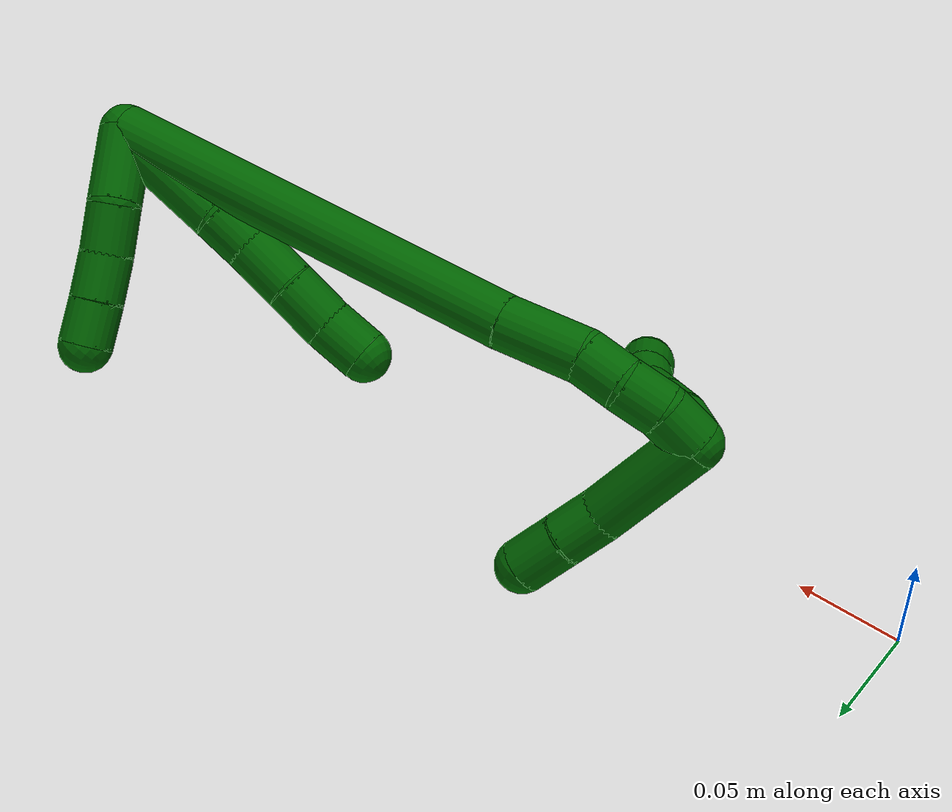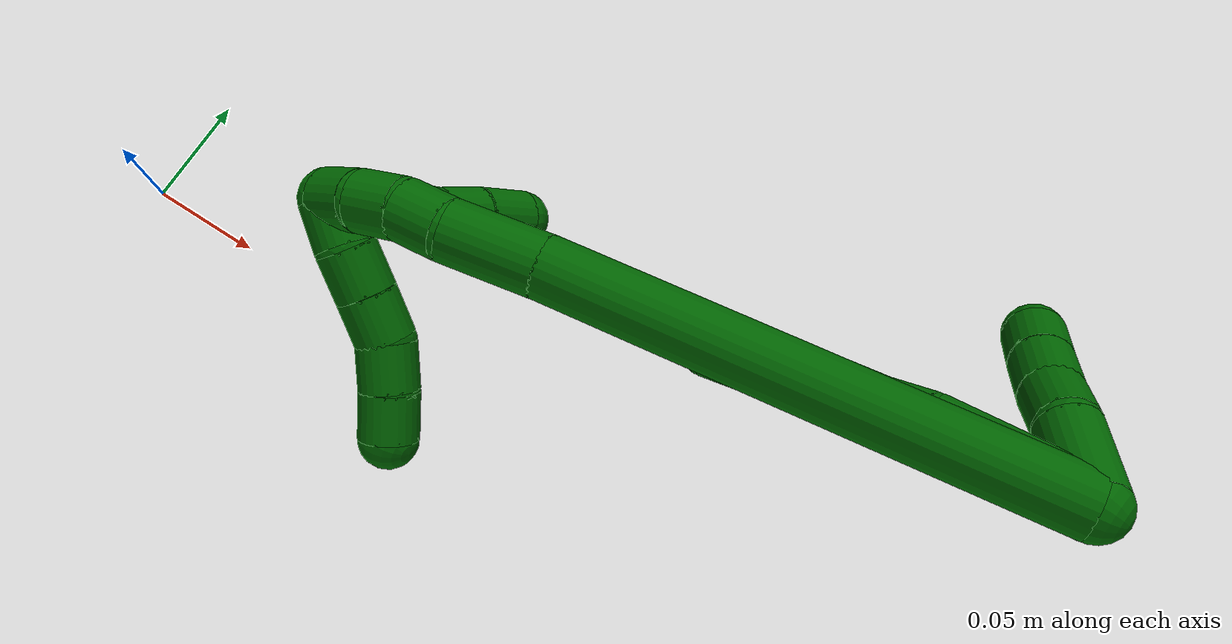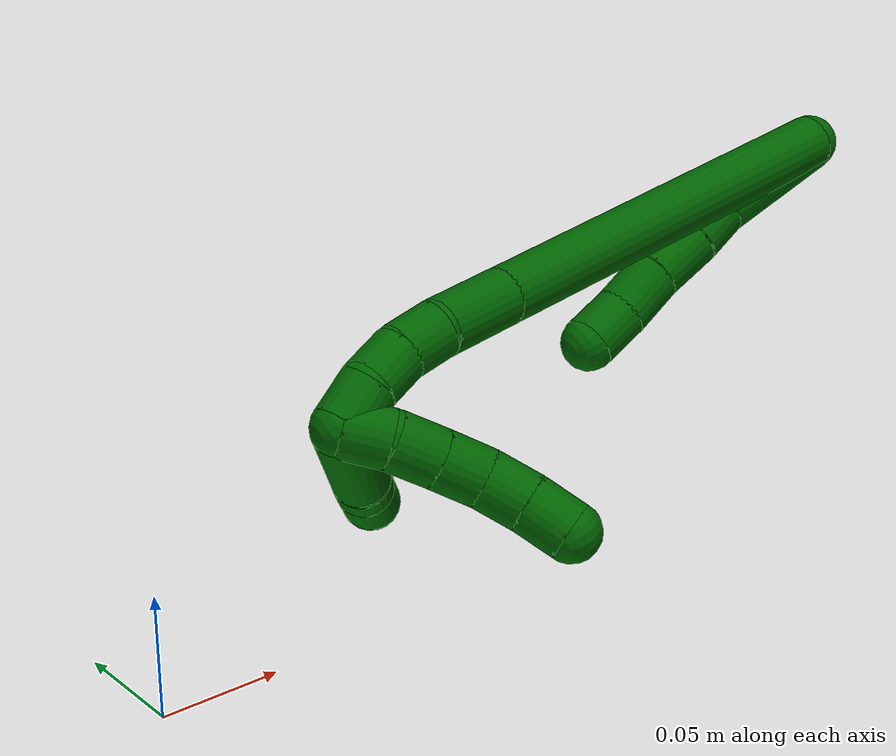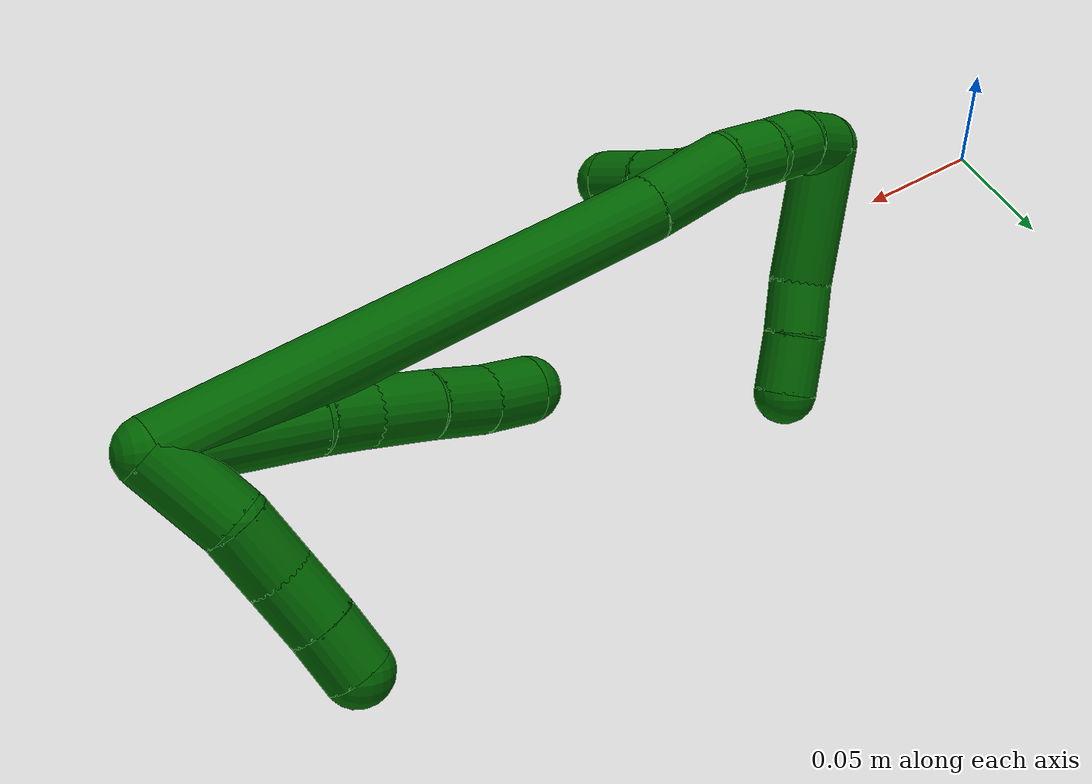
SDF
<sdf version="1.7">
 <world name="default">
  <model name="6">
   <static>0</static>
   <link name="6">
    <collision name="collision-cylinder-e_1_2_8">
     <pose>0.0019 -0.002079 -0.029008 3.07004 0.065245 1.47856</pose>
     <geometry><cylinder><radius>0.0125</radius><length>0.05829</length></cylinder></geometry>
     <surface>
      <friction><ode><mu>1.16</mu><mu2>1.16</mu2><slip1>0</slip1><slip2>0</slip2></ode></friction>
      <contact><ode><kp>1e+06</kp><kd>1</kd><max_vel>0</max_vel><min_depth>0.001</min_depth></ode></contact>
     </surface>
    </collision>
    <visual name="visual-cylinder-e_1_2_8">
     <pose>0.0019 -0.002079 -0.029008 3.07004 0.065245 1.47856</pose>
     <geometry><cylinder><radius>0.0125</radius><length>0.05829</length></cylinder></geometry>
     <material><ambient>0 0.392157 0.003922 1</ambient></material>
    </visual>
    <collision name="collision-cylinder-e_2_8_9">
     <pose>0.006336 -0.005017 -0.06776 3.05368 0.253686 2.47735</pose>
     <geometry><cylinder><radius>0.0125</radius><length>0.020208</length></cylinder></geometry>
     <surface>
      <friction><ode><mu>1.16</mu><mu2>1.16</mu2><slip1>0</slip1><slip2>0</slip2></ode></friction>
      <contact><ode><kp>1e+06</kp><kd>1</kd><max_vel>0</max_vel><min_depth>0.001</min_depth></ode></contact>
     </surface>
    </collision>
    <visual name="visual-cylinder-e_2_8_9">
     <pose>0.006336 -0.005017 -0.06776 3.05368 0.253686 2.47735</pose>
     <geometry><cylinder><radius>0.0125</radius><length>0.020208</length></cylinder></geometry>
     <material><ambient>0 0.392157 0.003922 1</ambient></material>
    </visual>
    <collision name="collision-cylinder-e_3_9_10">
     <pose>0.011035 -0.006425 -0.090249 3.09851 0.16791 2.64038</pose>
     <geometry><cylinder><radius>0.0125</radius><length>0.02588</length></cylinder></geometry>
     <surface>
      <friction><ode><mu>1.16</mu><mu2>1.16</mu2><slip1>0</slip1><slip2>0</slip2></ode></friction>
      <contact><ode><kp>1e+06</kp><kd>1</kd><max_vel>0</max_vel><min_depth>0.001</min_depth></ode></contact>
     </surface>
    </collision>
    <visual name="visual-cylinder-e_3_9_10">
     <pose>0.011035 -0.006425 -0.090249 3.09851 0.16791 2.64038</pose>
     <geometry><cylinder><radius>0.0125</radius><length>0.02588</length></cylinder></geometry>
     <material><ambient>0 0.392157 0.003922 1</ambient></material>
    </visual>
    <collision name="collision-cylinder-e_4_10_11">
     <pose>0.016459 -0.007601 -0.114633 3.08782 0.272878 2.7547</pose>
     <geometry><cylinder><radius>0.0125</radius><length>0.024204</length></cylinder></geometry>
     <surface>
      <friction><ode><mu>1.16</mu><mu2>1.16</mu2><slip1>0</slip1><slip2>0</slip2></ode></friction>
      <contact><ode><kp>1e+06</kp><kd>1</kd><max_vel>0</max_vel><min_depth>0.001</min_depth></ode></contact>
     </surface>
    </collision>
    <visual name="visual-cylinder-e_4_10_11">
     <pose>0.016459 -0.007601 -0.114633 3.08782 0.272878 2.7547</pose>
     <geometry><cylinder><radius>0.0125</radius><length>0.024204</length></cylinder></geometry>
     <material><ambient>0 0.392157 0.003922 1</ambient></material>
    </visual>
    <collision name="collision-cylinder-e_5_11_6">
     <pose>0.021531 -0.009512 -0.136746 3.01959 0.169925 1.89729</pose>
     <geometry><cylinder><radius>0.0125</radius><length>0.021418</length></cylinder></geometry>
     <surface>
      <friction><ode><mu>1.16</mu><mu2>1.16</mu2><slip1>0</slip1><slip2>0</slip2></ode></friction>
      <contact><ode><kp>1e+06</kp><kd>1</kd><max_vel>0</max_vel><min_depth>0.001</min_depth></ode></contact>
     </surface>
    </collision>
    <visual name="visual-cylinder-e_5_11_6">
     <pose>0.021531 -0.009512 -0.136746 3.01959 0.169925 1.89729</pose>
     <geometry><cylinder><radius>0.0125</radius><length>0.021418</length></cylinder></geometry>
     <material><ambient>0 0.392157 0.003922 1</ambient></material>
    </visual>
    <collision name="collision-cylinder-e_1_2_12">
     <pose>0.001255 0.013287 -0.011096 -2.26658 0.072366 -0.154475</pose>
     <geometry><cylinder><radius>0.0125</radius><length>0.034711</length></cylinder></geometry>
     <surface>
      <friction><ode><mu>1.16</mu><mu2>1.16</mu2><slip1>0</slip1><slip2>0</slip2></ode></friction>
      <contact><ode><kp>1e+06</kp><kd>1</kd><max_vel>0</max_vel><min_depth>0.001</min_depth></ode></contact>
     </surface>
    </collision>
    <visual name="visual-cylinder-e_1_2_12">
     <pose>0.001255 0.013287 -0.011096 -2.26658 0.072366 -0.154475</pose>
     <geometry><cylinder><radius>0.0125</radius><length>0.034711</length></cylinder></geometry>
     <material><ambient>0 0.392157 0.003922 1</ambient></material>
    </visual>
    <collision name="collision-cylinder-e_2_12_13">
     <pose>0.006281 0.035321 -0.028594 -2.2026 0.334824 -0.643083</pose>
     <geometry><cylinder><radius>0.0125</radius><length>0.022955</length></cylinder></geometry>
     <surface>
      <friction><ode><mu>1.16</mu><mu2>1.16</mu2><slip1>0</slip1><slip2>0</slip2></ode></friction>
      <contact><ode><kp>1e+06</kp><kd>1</kd><max_vel>0</max_vel><min_depth>0.001</min_depth></ode></contact>
     </surface>
    </collision>
    <visual name="visual-cylinder-e_2_12_13">
     <pose>0.006281 0.035321 -0.028594 -2.2026 0.334824 -0.643083</pose>
     <geometry><cylinder><radius>0.0125</radius><length>0.022955</length></cylinder></geometry>
     <material><ambient>0 0.392157 0.003922 1</ambient></material>
    </visual>
    <collision name="collision-cylinder-e_3_13_14">
     <pose>0.01279 0.052783 -0.040887 -2.16521 0.254568 -0.47294</pose>
     <geometry><cylinder><radius>0.0125</radius><length>0.021738</length></cylinder></geometry>
     <surface>
      <friction><ode><mu>1.16</mu><mu2>1.16</mu2><slip1>0</slip1><slip2>0</slip2></ode></friction>
      <contact><ode><kp>1e+06</kp><kd>1</kd><max_vel>0</max_vel><min_depth>0.001</min_depth></ode></contact>
     </surface>
    </collision>
    <visual name="visual-cylinder-e_3_13_14">
     <pose>0.01279 0.052783 -0.040887 -2.16521 0.254568 -0.47294</pose>
     <geometry><cylinder><radius>0.0125</radius><length>0.021738</length></cylinder></geometry>
     <material><ambient>0 0.392157 0.003922 1</ambient></material>
    </visual>
    <collision name="collision-cylinder-e_4_14_5">
     <pose>0.018336 0.069927 -0.051983 -2.12407 0.276296 -0.488608</pose>
     <geometry><cylinder><radius>0.0125</radius><length>0.020595</length></cylinder></geometry>
     <surface>
      <friction><ode><mu>1.16</mu><mu2>1.16</mu2><slip1>0</slip1><slip2>0</slip2></ode></friction>
      <contact><ode><kp>1e+06</kp><kd>1</kd><max_vel>0</max_vel><min_depth>0.001</min_depth></ode></contact>
     </surface>
    </collision>
    <visual name="visual-cylinder-e_4_14_5">
     <pose>0.018336 0.069927 -0.051983 -2.12407 0.276296 -0.488608</pose>
     <geometry><cylinder><radius>0.0125</radius><length>0.020595</length></cylinder></geometry>
     <material><ambient>0 0.392157 0.003922 1</ambient></material>
    </visual>
    <collision name="collision-cylinder-e_1_2_15">
     <pose>-0.011576 -0.02901 -0.095833 2.84765 -0.1151 -0.74229</pose>
     <geometry><cylinder><radius>0.0125</radius><length>0.201588</length></cylinder></geometry>
     <surface>
      <friction><ode><mu>1.16</mu><mu2>1.16</mu2><slip1>0</slip1><slip2>0</slip2></ode></friction>
      <contact><ode><kp>1e+06</kp><kd>1</kd><max_vel>0</max_vel><min_depth>0.001</min_depth></ode></contact>
     </surface>
    </collision>
    <visual name="visual-cylinder-e_1_2_15">
     <pose>-0.011576 -0.02901 -0.095833 2.84765 -0.1151 -0.74229</pose>
     <geometry><cylinder><radius>0.0125</radius><length>0.201588</length></cylinder></geometry>
     <material><ambient>0 0.392157 0.003922 1</ambient></material>
    </visual>
    <collision name="collision-cylinder-e_2_15_16">
     <pose>-0.025516 -0.064629 -0.209408 2.78498 -0.124219 -0.664558</pose>
     <geometry><cylinder><radius>0.0125</radius><length>0.038162</length></cylinder></geometry>
     <surface>
      <friction><ode><mu>1.16</mu><mu2>1.16</mu2><slip1>0</slip1><slip2>0</slip2></ode></friction>
      <contact><ode><kp>1e+06</kp><kd>1</kd><max_vel>0</max_vel><min_depth>0.001</min_depth></ode></contact>
     </surface>
    </collision>
    <visual name="visual-cylinder-e_2_15_16">
     <pose>-0.025516 -0.064629 -0.209408 2.78498 -0.124219 -0.664558</pose>
     <geometry><cylinder><radius>0.0125</radius><length>0.038162</length></cylinder></geometry>
     <material><ambient>0 0.392157 0.003922 1</ambient></material>
    </visual>
    <collision name="collision-cylinder-e_3_16_17">
     <pose>-0.027972 -0.072889 -0.237076 2.9768 -0.009166 -0.110879</pose>
     <geometry><cylinder><radius>0.0125</radius><length>0.020124</length></cylinder></geometry>
     <surface>
      <friction><ode><mu>1.16</mu><mu2>1.16</mu2><slip1>0</slip1><slip2>0</slip2></ode></friction>
      <contact><ode><kp>1e+06</kp><kd>1</kd><max_vel>0</max_vel><min_depth>0.001</min_depth></ode></contact>
     </surface>
    </collision>
    <visual name="visual-cylinder-e_3_16_17">
     <pose>-0.027972 -0.072889 -0.237076 2.9768 -0.009166 -0.110879</pose>
     <geometry><cylinder><radius>0.0125</radius><length>0.020124</length></cylinder></geometry>
     <material><ambient>0 0.392157 0.003922 1</ambient></material>
    </visual>
    <collision name="collision-cylinder-e_4_17_18">
     <pose>-0.026114 -0.077005 -0.256524 2.88831 0.195748 1.31383</pose>
     <geometry><cylinder><radius>0.0125</radius><length>0.020057</length></cylinder></geometry>
     <surface>
      <friction><ode><mu>1.16</mu><mu2>1.16</mu2><slip1>0</slip1><slip2>0</slip2></ode></friction>
      <contact><ode><kp>1e+06</kp><kd>1</kd><max_vel>0</max_vel><min_depth>0.001</min_depth></ode></contact>
     </surface>
    </collision>
    <visual name="visual-cylinder-e_4_17_18">
     <pose>-0.026114 -0.077005 -0.256524 2.88831 0.195748 1.31383</pose>
     <geometry><cylinder><radius>0.0125</radius><length>0.020057</length></cylinder></geometry>
     <material><ambient>0 0.392157 0.003922 1</ambient></material>
    </visual>
    <collision name="collision-cylinder-e_5_18_1">
     <pose>-0.020096 -0.080418 -0.275171 3.03809 0.417358 2.66182</pose>
     <geometry><cylinder><radius>0.0125</radius><length>0.02007</length></cylinder></geometry>
     <surface>
      <friction><ode><mu>1.16</mu><mu2>1.16</mu2><slip1>0</slip1><slip2>0</slip2></ode></friction>
      <contact><ode><kp>1e+06</kp><kd>1</kd><max_vel>0</max_vel><min_depth>0.001</min_depth></ode></contact>
     </surface>
    </collision>
    <visual name="visual-cylinder-e_5_18_1">
     <pose>-0.020096 -0.080418 -0.275171 3.03809 0.417358 2.66182</pose>
     <geometry><cylinder><radius>0.0125</radius><length>0.02007</length></cylinder></geometry>
     <material><ambient>0 0.392157 0.003922 1</ambient></material>
    </visual>
    <collision name="collision-cylinder-e_1_1_19">
     <pose>-0.00023 -0.059169 -0.27936 -1.35202 0.6072 -0.492368</pose>
     <geometry><cylinder><radius>0.0125</radius><length>0.055375</length></cylinder></geometry>
     <surface>
      <friction><ode><mu>1.16</mu><mu2>1.16</mu2><slip1>0</slip1><slip2>0</slip2></ode></friction>
      <contact><ode><kp>1e+06</kp><kd>1</kd><max_vel>0</max_vel><min_depth>0.001</min_depth></ode></contact>
     </surface>
    </collision>
    <visual name="visual-cylinder-e_1_1_19">
     <pose>-0.00023 -0.059169 -0.27936 -1.35202 0.6072 -0.492368</pose>
     <geometry><cylinder><radius>0.0125</radius><length>0.055375</length></cylinder></geometry>
     <material><ambient>0 0.392157 0.003922 1</ambient></material>
    </visual>
    <collision name="collision-cylinder-e_2_19_20">
     <pose>0.019795 -0.027543 -0.272044 -1.32337 0.41008 -0.321139</pose>
     <geometry><cylinder><radius>0.0125</radius><length>0.021211</length></cylinder></geometry>
     <surface>
      <friction><ode><mu>1.16</mu><mu2>1.16</mu2><slip1>0</slip1><slip2>0</slip2></ode></friction>
      <contact><ode><kp>1e+06</kp><kd>1</kd><max_vel>0</max_vel><min_depth>0.001</min_depth></ode></contact>
     </surface>
    </collision>
    <visual name="visual-cylinder-e_2_19_20">
     <pose>0.019795 -0.027543 -0.272044 -1.32337 0.41008 -0.321139</pose>
     <geometry><cylinder><radius>0.0125</radius><length>0.021211</length></cylinder></geometry>
     <material><ambient>0 0.392157 0.003922 1</ambient></material>
    </visual>
    <collision name="collision-cylinder-e_3_20_4">
     <pose>0.029633 -0.008197 -0.266968 -1.30556 0.49972 -0.3854</pose>
     <geometry><cylinder><radius>0.0125</radius><length>0.023414</length></cylinder></geometry>
     <surface>
      <friction><ode><mu>1.16</mu><mu2>1.16</mu2><slip1>0</slip1><slip2>0</slip2></ode></friction>
      <contact><ode><kp>1e+06</kp><kd>1</kd><max_vel>0</max_vel><min_depth>0.001</min_depth></ode></contact>
     </surface>
    </collision>
    <visual name="visual-cylinder-e_3_20_4">
     <pose>0.029633 -0.008197 -0.266968 -1.30556 0.49972 -0.3854</pose>
     <geometry><cylinder><radius>0.0125</radius><length>0.023414</length></cylinder></geometry>
     <material><ambient>0 0.392157 0.003922 1</ambient></material>
    </visual>
    <collision name="collision-cylinder-e_1_1_21">
     <pose>-0.009401 -0.084168 -0.277351 0.383643 0.724409 0.146916</pose>
     <geometry><cylinder><radius>0.0125</radius><length>0.02</length></cylinder></geometry>
     <surface>
      <friction><ode><mu>1.16</mu><mu2>1.16</mu2><slip1>0</slip1><slip2>0</slip2></ode></friction>
      <contact><ode><kp>1e+06</kp><kd>1</kd><max_vel>0</max_vel><min_depth>0.001</min_depth></ode></contact>
     </surface>
    </collision>
    <visual name="visual-cylinder-e_1_1_21">
     <pose>-0.009401 -0.084168 -0.277351 0.383643 0.724409 0.146916</pose>
     <geometry><cylinder><radius>0.0125</radius><length>0.02</length></cylinder></geometry>
     <material><ambient>0 0.392157 0.003922 1</ambient></material>
    </visual>
    <collision name="collision-cylinder-e_2_21_22">
     <pose>0.004967 -0.088217 -0.2642 0.198045 0.885402 0.094128</pose>
     <geometry><cylinder><radius>0.0125</radius><length>0.02</length></cylinder></geometry>
     <surface>
      <friction><ode><mu>1.16</mu><mu2>1.16</mu2><slip1>0</slip1><slip2>0</slip2></ode></friction>
      <contact><ode><kp>1e+06</kp><kd>1</kd><max_vel>0</max_vel><min_depth>0.001</min_depth></ode></contact>
     </surface>
    </collision>
    <visual name="visual-cylinder-e_2_21_22">
     <pose>0.004967 -0.088217 -0.2642 0.198045 0.885402 0.094128</pose>
     <geometry><cylinder><radius>0.0125</radius><length>0.02</length></cylinder></geometry>
     <material><ambient>0 0.392157 0.003922 1</ambient></material>
    </visual>
    <collision name="collision-cylinder-e_3_22_23">
     <pose>0.020594 -0.090741 -0.251978 0.209385 0.908369 0.102512</pose>
     <geometry><cylinder><radius>0.0125</radius><length>0.02</length></cylinder></geometry>
     <surface>
      <friction><ode><mu>1.16</mu><mu2>1.16</mu2><slip1>0</slip1><slip2>0</slip2></ode></friction>
      <contact><ode><kp>1e+06</kp><kd>1</kd><max_vel>0</max_vel><min_depth>0.001</min_depth></ode></contact>
     </surface>
    </collision>
    <visual name="visual-cylinder-e_3_22_23">
     <pose>0.020594 -0.090741 -0.251978 0.209385 0.908369 0.102512</pose>
     <geometry><cylinder><radius>0.0125</radius><length>0.02</length></cylinder></geometry>
     <material><ambient>0 0.392157 0.003922 1</ambient></material>
    </visual>
    <collision name="collision-cylinder-e_4_23_24">
     <pose>0.036499 -0.096065 -0.241568 0.744128 0.930641 0.386971</pose>
     <geometry><cylinder><radius>0.0125</radius><length>0.02</length></cylinder></geometry>
     <surface>
      <friction><ode><mu>1.16</mu><mu2>1.16</mu2><slip1>0</slip1><slip2>0</slip2></ode></friction>
      <contact><ode><kp>1e+06</kp><kd>1</kd><max_vel>0</max_vel><min_depth>0.001</min_depth></ode></contact>
     </surface>
    </collision>
    <visual name="visual-cylinder-e_4_23_24">
     <pose>0.036499 -0.096065 -0.241568 0.744128 0.930641 0.386971</pose>
     <geometry><cylinder><radius>0.0125</radius><length>0.02</length></cylinder></geometry>
     <material><ambient>0 0.392157 0.003922 1</ambient></material>
    </visual>
    <collision name="collision-cylinder-e_5_24_3">
     <pose>0.052755 -0.104558 -0.233653 0.901156 0.967656 0.49788</pose>
     <geometry><cylinder><radius>0.0125</radius><length>0.02</length></cylinder></geometry>
     <surface>
      <friction><ode><mu>1.16</mu><mu2>1.16</mu2><slip1>0</slip1><slip2>0</slip2></ode></friction>
      <contact><ode><kp>1e+06</kp><kd>1</kd><max_vel>0</max_vel><min_depth>0.001</min_depth></ode></contact>
     </surface>
    </collision>
    <visual name="visual-cylinder-e_5_24_3">
     <pose>0.052755 -0.104558 -0.233653 0.901156 0.967656 0.49788</pose>
     <geometry><cylinder><radius>0.0125</radius><length>0.02</length></cylinder></geometry>
     <material><ambient>0 0.392157 0.003922 1</ambient></material>
    </visual>
    <collision name="collision-sphere-3">
     <pose>0.06099 -0.109005 -0.230132 0 -0 0</pose>
     <geometry><sphere><radius>0.0125</radius></sphere></geometry>
     <surface>
      <friction><ode><mu>1.16</mu><mu2>1.16</mu2><slip1>0</slip1><slip2>0</slip2></ode></friction>
      <contact><ode><kp>1e+06</kp><kd>1</kd><max_vel>0</max_vel><min_depth>0.001</min_depth></ode></contact>
     </surface>
    </collision>
    <visual name="visual-sphere-3">
     <pose>0.06099 -0.109005 -0.230132 0 -0 0</pose>
     <geometry><sphere><radius>0.0125</radius></sphere></geometry>
     <material><ambient>0 0.392157 0.003922 1</ambient></material>
    </visual>
    <collision name="collision-sphere-24">
     <pose>0.044519 -0.100111 -0.237174 0 -0 0</pose>
     <geometry><sphere><radius>0.0125</radius></sphere></geometry>
     <surface>
      <friction><ode><mu>1.16</mu><mu2>1.16</mu2><slip1>0</slip1><slip2>0</slip2></ode></friction>
      <contact><ode><kp>1e+06</kp><kd>1</kd><max_vel>0</max_vel><min_depth>0.001</min_depth></ode></contact>
     </surface>
    </collision>
    <visual name="visual-sphere-24">
     <pose>0.044519 -0.100111 -0.237174 0 -0 0</pose>
     <geometry><sphere><radius>0.0125</radius></sphere></geometry>
     <material><ambient>0 0.392157 0.003922 1</ambient></material>
    </visual>
    <collision name="collision-sphere-23">
     <pose>0.028479 -0.092019 -0.245962 0 -0 0</pose>
     <geometry><sphere><radius>0.0125</radius></sphere></geometry>
     <surface>
      <friction><ode><mu>1.16</mu><mu2>1.16</mu2><slip1>0</slip1><slip2>0</slip2></ode></friction>
      <contact><ode><kp>1e+06</kp><kd>1</kd><max_vel>0</max_vel><min_depth>0.001</min_depth></ode></contact>
     </surface>
    </collision>
    <visual name="visual-sphere-23">
     <pose>0.028479 -0.092019 -0.245962 0 -0 0</pose>
     <geometry><sphere><radius>0.0125</radius></sphere></geometry>
     <material><ambient>0 0.392157 0.003922 1</ambient></material>
    </visual>
    <collision name="collision-sphere-22">
     <pose>0.012709 -0.089462 -0.257994 0 -0 0</pose>
     <geometry><sphere><radius>0.0125</radius></sphere></geometry>
     <surface>
      <friction><ode><mu>1.16</mu><mu2>1.16</mu2><slip1>0</slip1><slip2>0</slip2></ode></friction>
      <contact><ode><kp>1e+06</kp><kd>1</kd><max_vel>0</max_vel><min_depth>0.001</min_depth></ode></contact>
     </surface>
    </collision>
    <visual name="visual-sphere-22">
     <pose>0.012709 -0.089462 -0.257994 0 -0 0</pose>
     <geometry><sphere><radius>0.0125</radius></sphere></geometry>
     <material><ambient>0 0.392157 0.003922 1</ambient></material>
    </visual>
    <collision name="collision-sphere-21">
     <pose>-0.002774 -0.086972 -0.270406 0 -0 0</pose>
     <geometry><sphere><radius>0.0125</radius></sphere></geometry>
     <surface>
      <friction><ode><mu>1.16</mu><mu2>1.16</mu2><slip1>0</slip1><slip2>0</slip2></ode></friction>
      <contact><ode><kp>1e+06</kp><kd>1</kd><max_vel>0</max_vel><min_depth>0.001</min_depth></ode></contact>
     </surface>
    </collision>
    <visual name="visual-sphere-21">
     <pose>-0.002774 -0.086972 -0.270406 0 -0 0</pose>
     <geometry><sphere><radius>0.0125</radius></sphere></geometry>
     <material><ambient>0 0.392157 0.003922 1</ambient></material>
    </visual>
    <collision name="collision-sphere-4">
     <pose>0.035243 0.00172 -0.264274 0 -0 0</pose>
     <geometry><sphere><radius>0.0125</radius></sphere></geometry>
     <surface>
      <friction><ode><mu>1.16</mu><mu2>1.16</mu2><slip1>0</slip1><slip2>0</slip2></ode></friction>
      <contact><ode><kp>1e+06</kp><kd>1</kd><max_vel>0</max_vel><min_depth>0.001</min_depth></ode></contact>
     </surface>
    </collision>
    <visual name="visual-sphere-4">
     <pose>0.035243 0.00172 -0.264274 0 -0 0</pose>
     <geometry><sphere><radius>0.0125</radius></sphere></geometry>
     <material><ambient>0 0.392157 0.003922 1</ambient></material>
    </visual>
    <collision name="collision-sphere-20">
     <pose>0.024023 -0.018113 -0.269662 0 -0 0</pose>
     <geometry><sphere><radius>0.0125</radius></sphere></geometry>
     <surface>
      <friction><ode><mu>1.16</mu><mu2>1.16</mu2><slip1>0</slip1><slip2>0</slip2></ode></friction>
      <contact><ode><kp>1e+06</kp><kd>1</kd><max_vel>0</max_vel><min_depth>0.001</min_depth></ode></contact>
     </surface>
    </collision>
    <visual name="visual-sphere-20">
     <pose>0.024023 -0.018113 -0.269662 0 -0 0</pose>
     <geometry><sphere><radius>0.0125</radius></sphere></geometry>
     <material><ambient>0 0.392157 0.003922 1</ambient></material>
    </visual>
    <collision name="collision-sphere-6">
     <pose>0.023342 -0.010797 -0.147223 0 -0 0</pose>
     <geometry><sphere><radius>0.0125</radius></sphere></geometry>
     <surface>
      <friction><ode><mu>1.16</mu><mu2>1.16</mu2><slip1>0</slip1><slip2>0</slip2></ode></friction>
      <contact><ode><kp>1e+06</kp><kd>1</kd><max_vel>0</max_vel><min_depth>0.001</min_depth></ode></contact>
     </surface>
    </collision>
    <visual name="visual-sphere-6">
     <pose>0.023342 -0.010797 -0.147223 0 -0 0</pose>
     <geometry><sphere><radius>0.0125</radius></sphere></geometry>
     <material><ambient>0 0.392157 0.003922 1</ambient></material>
    </visual>
    <collision name="collision-sphere-11">
     <pose>0.01972 -0.008228 -0.12627 0 -0 0</pose>
     <geometry><sphere><radius>0.0125</radius></sphere></geometry>
     <surface>
      <friction><ode><mu>1.16</mu><mu2>1.16</mu2><slip1>0</slip1><slip2>0</slip2></ode></friction>
      <contact><ode><kp>1e+06</kp><kd>1</kd><max_vel>0</max_vel><min_depth>0.001</min_depth></ode></contact>
     </surface>
    </collision>
    <visual name="visual-sphere-11">
     <pose>0.01972 -0.008228 -0.12627 0 -0 0</pose>
     <geometry><sphere><radius>0.0125</radius></sphere></geometry>
     <material><ambient>0 0.392157 0.003922 1</ambient></material>
    </visual>
    <collision name="collision-sphere-10">
     <pose>0.013197 -0.006975 -0.102995 0 -0 0</pose>
     <geometry><sphere><radius>0.0125</radius></sphere></geometry>
     <surface>
      <friction><ode><mu>1.16</mu><mu2>1.16</mu2><slip1>0</slip1><slip2>0</slip2></ode></friction>
      <contact><ode><kp>1e+06</kp><kd>1</kd><max_vel>0</max_vel><min_depth>0.001</min_depth></ode></contact>
     </surface>
    </collision>
    <visual name="visual-sphere-10">
     <pose>0.013197 -0.006975 -0.102995 0 -0 0</pose>
     <geometry><sphere><radius>0.0125</radius></sphere></geometry>
     <material><ambient>0 0.392157 0.003922 1</ambient></material>
    </visual>
    <collision name="collision-sphere-9">
     <pose>0.008872 -0.005876 -0.077503 0 -0 0</pose>
     <geometry><sphere><radius>0.0125</radius></sphere></geometry>
     <surface>
      <friction><ode><mu>1.16</mu><mu2>1.16</mu2><slip1>0</slip1><slip2>0</slip2></ode></friction>
      <contact><ode><kp>1e+06</kp><kd>1</kd><max_vel>0</max_vel><min_depth>0.001</min_depth></ode></contact>
     </surface>
    </collision>
    <visual name="visual-sphere-9">
     <pose>0.008872 -0.005876 -0.077503 0 -0 0</pose>
     <geometry><sphere><radius>0.0125</radius></sphere></geometry>
     <material><ambient>0 0.392157 0.003922 1</ambient></material>
    </visual>
    <collision name="collision-sphere-2">
     <geometry><sphere><radius>0.0125</radius></sphere></geometry>
     <surface>
      <friction><ode><mu>1.16</mu><mu2>1.16</mu2><slip1>0</slip1><slip2>0</slip2></ode></friction>
      <contact><ode><kp>1e+06</kp><kd>1</kd><max_vel>0</max_vel><min_depth>0.001</min_depth></ode></contact>
     </surface>
    </collision>
    <visual name="visual-sphere-2">
     <geometry><sphere><radius>0.0125</radius></sphere></geometry>
     <material><ambient>0 0.392157 0.003922 1</ambient></material>
    </visual>
    <collision name="collision-sphere-19">
     <pose>0.015567 -0.036973 -0.274426 0 -0 0</pose>
     <geometry><sphere><radius>0.0125</radius></sphere></geometry>
     <surface>
      <friction><ode><mu>1.16</mu><mu2>1.16</mu2><slip1>0</slip1><slip2>0</slip2></ode></friction>
      <contact><ode><kp>1e+06</kp><kd>1</kd><max_vel>0</max_vel><min_depth>0.001</min_depth></ode></contact>
     </surface>
    </collision>
    <visual name="visual-sphere-19">
     <pose>0.015567 -0.036973 -0.274426 0 -0 0</pose>
     <geometry><sphere><radius>0.0125</radius></sphere></geometry>
     <material><ambient>0 0.392157 0.003922 1</ambient></material>
    </visual>
    <collision name="collision-sphere-8">
     <pose>0.0038 -0.004158 -0.058017 0 -0 0</pose>
     <geometry><sphere><radius>0.0125</radius></sphere></geometry>
     <surface>
      <friction><ode><mu>1.16</mu><mu2>1.16</mu2><slip1>0</slip1><slip2>0</slip2></ode></friction>
      <contact><ode><kp>1e+06</kp><kd>1</kd><max_vel>0</max_vel><min_depth>0.001</min_depth></ode></contact>
     </surface>
    </collision>
    <visual name="visual-sphere-8">
     <pose>0.0038 -0.004158 -0.058017 0 -0 0</pose>
     <geometry><sphere><radius>0.0125</radius></sphere></geometry>
     <material><ambient>0 0.392157 0.003922 1</ambient></material>
    </visual>
    <collision name="collision-sphere-12">
     <pose>0.00251 0.026573 -0.022191 0 -0 0</pose>
     <geometry><sphere><radius>0.0125</radius></sphere></geometry>
     <surface>
      <friction><ode><mu>1.16</mu><mu2>1.16</mu2><slip1>0</slip1><slip2>0</slip2></ode></friction>
      <contact><ode><kp>1e+06</kp><kd>1</kd><max_vel>0</max_vel><min_depth>0.001</min_depth></ode></contact>
     </surface>
    </collision>
    <visual name="visual-sphere-12">
     <pose>0.00251 0.026573 -0.022191 0 -0 0</pose>
     <geometry><sphere><radius>0.0125</radius></sphere></geometry>
     <material><ambient>0 0.392157 0.003922 1</ambient></material>
    </visual>
    <collision name="collision-sphere-13">
     <pose>0.010053 0.044068 -0.034996 0 -0 0</pose>
     <geometry><sphere><radius>0.0125</radius></sphere></geometry>
     <surface>
      <friction><ode><mu>1.16</mu><mu2>1.16</mu2><slip1>0</slip1><slip2>0</slip2></ode></friction>
      <contact><ode><kp>1e+06</kp><kd>1</kd><max_vel>0</max_vel><min_depth>0.001</min_depth></ode></contact>
     </surface>
    </collision>
    <visual name="visual-sphere-13">
     <pose>0.010053 0.044068 -0.034996 0 -0 0</pose>
     <geometry><sphere><radius>0.0125</radius></sphere></geometry>
     <material><ambient>0 0.392157 0.003922 1</ambient></material>
    </visual>
    <collision name="collision-sphere-14">
     <pose>0.015527 0.061498 -0.046777 0 -0 0</pose>
     <geometry><sphere><radius>0.0125</radius></sphere></geometry>
     <surface>
      <friction><ode><mu>1.16</mu><mu2>1.16</mu2><slip1>0</slip1><slip2>0</slip2></ode></friction>
      <contact><ode><kp>1e+06</kp><kd>1</kd><max_vel>0</max_vel><min_depth>0.001</min_depth></ode></contact>
     </surface>
    </collision>
    <visual name="visual-sphere-14">
     <pose>0.015527 0.061498 -0.046777 0 -0 0</pose>
     <geometry><sphere><radius>0.0125</radius></sphere></geometry>
     <material><ambient>0 0.392157 0.003922 1</ambient></material>
    </visual>
    <collision name="collision-sphere-5">
     <pose>0.021145 0.078356 -0.057189 0 -0 0</pose>
     <geometry><sphere><radius>0.0125</radius></sphere></geometry>
     <surface>
      <friction><ode><mu>1.16</mu><mu2>1.16</mu2><slip1>0</slip1><slip2>0</slip2></ode></friction>
      <contact><ode><kp>1e+06</kp><kd>1</kd><max_vel>0</max_vel><min_depth>0.001</min_depth></ode></contact>
     </surface>
    </collision>
    <visual name="visual-sphere-5">
     <pose>0.021145 0.078356 -0.057189 0 -0 0</pose>
     <geometry><sphere><radius>0.0125</radius></sphere></geometry>
     <material><ambient>0 0.392157 0.003922 1</ambient></material>
    </visual>
    <collision name="collision-sphere-15">
     <pose>-0.023152 -0.058019 -0.191665 0 -0 0</pose>
     <geometry><sphere><radius>0.0125</radius></sphere></geometry>
     <surface>
      <friction><ode><mu>1.16</mu><mu2>1.16</mu2><slip1>0</slip1><slip2>0</slip2></ode></friction>
      <contact><ode><kp>1e+06</kp><kd>1</kd><max_vel>0</max_vel><min_depth>0.001</min_depth></ode></contact>
     </surface>
    </collision>
    <visual name="visual-sphere-15">
     <pose>-0.023152 -0.058019 -0.191665 0 -0 0</pose>
     <geometry><sphere><radius>0.0125</radius></sphere></geometry>
     <material><ambient>0 0.392157 0.003922 1</ambient></material>
    </visual>
    <collision name="collision-sphere-16">
     <pose>-0.02788 -0.071239 -0.227151 0 -0 0</pose>
     <geometry><sphere><radius>0.0125</radius></sphere></geometry>
     <surface>
      <friction><ode><mu>1.16</mu><mu2>1.16</mu2><slip1>0</slip1><slip2>0</slip2></ode></friction>
      <contact><ode><kp>1e+06</kp><kd>1</kd><max_vel>0</max_vel><min_depth>0.001</min_depth></ode></contact>
     </surface>
    </collision>
    <visual name="visual-sphere-16">
     <pose>-0.02788 -0.071239 -0.227151 0 -0 0</pose>
     <geometry><sphere><radius>0.0125</radius></sphere></geometry>
     <material><ambient>0 0.392157 0.003922 1</ambient></material>
    </visual>
    <collision name="collision-sphere-17">
     <pose>-0.028064 -0.07454 -0.247001 0 -0 0</pose>
     <geometry><sphere><radius>0.0125</radius></sphere></geometry>
     <surface>
      <friction><ode><mu>1.16</mu><mu2>1.16</mu2><slip1>0</slip1><slip2>0</slip2></ode></friction>
      <contact><ode><kp>1e+06</kp><kd>1</kd><max_vel>0</max_vel><min_depth>0.001</min_depth></ode></contact>
     </surface>
    </collision>
    <visual name="visual-sphere-17">
     <pose>-0.028064 -0.07454 -0.247001 0 -0 0</pose>
     <geometry><sphere><radius>0.0125</radius></sphere></geometry>
     <material><ambient>0 0.392157 0.003922 1</ambient></material>
    </visual>
    <collision name="collision-sphere-18">
     <pose>-0.024163 -0.07947 -0.266047 0 -0 0</pose>
     <geometry><sphere><radius>0.0125</radius></sphere></geometry>
     <surface>
      <friction><ode><mu>1.16</mu><mu2>1.16</mu2><slip1>0</slip1><slip2>0</slip2></ode></friction>
      <contact><ode><kp>1e+06</kp><kd>1</kd><max_vel>0</max_vel><min_depth>0.001</min_depth></ode></contact>
     </surface>
    </collision>
    <visual name="visual-sphere-18">
     <pose>-0.024163 -0.07947 -0.266047 0 -0 0</pose>
     <geometry><sphere><radius>0.0125</radius></sphere></geometry>
     <material><ambient>0 0.392157 0.003922 1</ambient></material>
    </visual>
    <collision name="collision-sphere-1">
     <pose>-0.016028 -0.081365 -0.284295 0 -0 0</pose>
     <geometry><sphere><radius>0.0125</radius></sphere></geometry>
     <surface>
      <friction><ode><mu>1.16</mu><mu2>1.16</mu2><slip1>0</slip1><slip2>0</slip2></ode></friction>
      <contact><ode><kp>1e+06</kp><kd>1</kd><max_vel>0</max_vel><min_depth>0.001</min_depth></ode></contact>
     </surface>
    </collision>
    <visual name="visual-sphere-1">
     <pose>-0.016028 -0.081365 -0.284295 0 -0 0</pose>
     <geometry><sphere><radius>0.0125</radius></sphere></geometry>
     <material><ambient>0 0.392157 0.003922 1</ambient></material>
    </visual>
    <inertial>
     <pose>0.000852 -0.030912 -0.146286 0 -0 0</pose>
     <mass>0.75</mass>
     <inertia>
      <ixx>9.5e-05</ixx>
      <ixy>0</ixy>
      <ixz>0</ixz>
      <iyy>-0.00091</iyy>
      <iyz>0</iyz>
      <izz>0.000207</izz>
     </inertia>
    </inertial>
   </link>
   <pose>0.388502 0.058017 0.126968 -0.844097 1.07597 -1.02376</pose>
  </model>
 </world>
</sdf>
